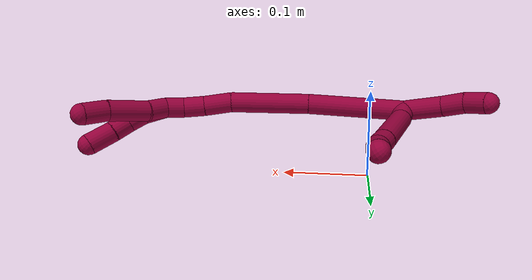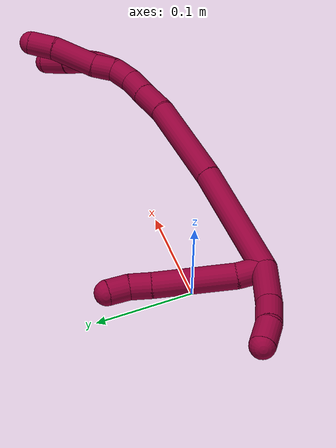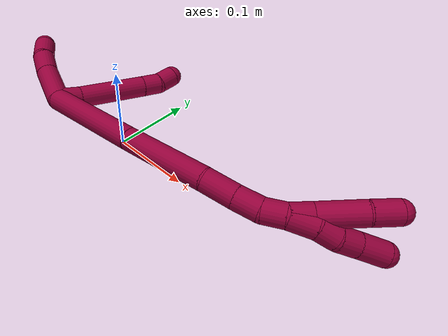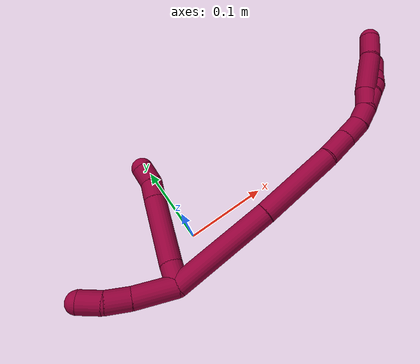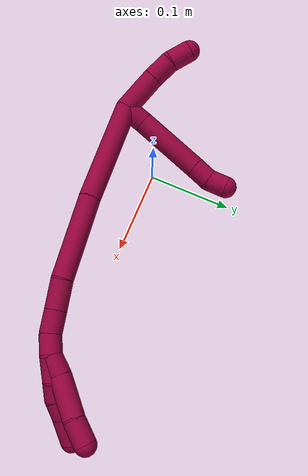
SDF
<sdf version="1.7">
 <world name="default">
  <model name="8">
   <static>0</static>
   <link name="8">
    <collision name="collision-cylinder-e_1_2_8">
     <pose>0.004558 0.012066 -0.000555 -1.61674 0.360839 -0.37742</pose>
     <geometry><cylinder><radius>0.0125</radius><length>0.025821</length></cylinder></geometry>
     <surface>
      <friction><ode><mu>1.16</mu><mu2>1.16</mu2><slip1>0</slip1><slip2>0</slip2></ode></friction>
      <contact><ode><kp>1e+06</kp><kd>1</kd><max_vel>0</max_vel><min_depth>0.001</min_depth></ode></contact>
     </surface>
    </collision>
    <visual name="visual-cylinder-e_1_2_8">
     <pose>0.004558 0.012066 -0.000555 -1.61674 0.360839 -0.37742</pose>
     <geometry><cylinder><radius>0.0125</radius><length>0.025821</length></cylinder></geometry>
     <material><ambient>0.584314 0 0.227451 1</ambient></material>
    </visual>
    <collision name="collision-cylinder-e_2_8_9">
     <pose>0.029353 0.058898 -0.001842 -1.59185 0.527048 -0.537733</pose>
     <geometry><cylinder><radius>0.0125</radius><length>0.080464</length></cylinder></geometry>
     <surface>
      <friction><ode><mu>1.16</mu><mu2>1.16</mu2><slip1>0</slip1><slip2>0</slip2></ode></friction>
      <contact><ode><kp>1e+06</kp><kd>1</kd><max_vel>0</max_vel><min_depth>0.001</min_depth></ode></contact>
     </surface>
    </collision>
    <visual name="visual-cylinder-e_2_8_9">
     <pose>0.029353 0.058898 -0.001842 -1.59185 0.527048 -0.537733</pose>
     <geometry><cylinder><radius>0.0125</radius><length>0.080464</length></cylinder></geometry>
     <material><ambient>0.584314 0 0.227451 1</ambient></material>
    </visual>
    <collision name="collision-cylinder-e_3_9_10">
     <pose>0.055552 0.102907 -0.00281 -1.5964 0.572729 -0.586755</pose>
     <geometry><cylinder><radius>0.0125</radius><length>0.022006</length></cylinder></geometry>
     <surface>
      <friction><ode><mu>1.16</mu><mu2>1.16</mu2><slip1>0</slip1><slip2>0</slip2></ode></friction>
      <contact><ode><kp>1e+06</kp><kd>1</kd><max_vel>0</max_vel><min_depth>0.001</min_depth></ode></contact>
     </surface>
    </collision>
    <visual name="visual-cylinder-e_3_9_10">
     <pose>0.055552 0.102907 -0.00281 -1.5964 0.572729 -0.586755</pose>
     <geometry><cylinder><radius>0.0125</radius><length>0.022006</length></cylinder></geometry>
     <material><ambient>0.584314 0 0.227451 1</ambient></material>
    </visual>
    <collision name="collision-cylinder-e_4_10_6">
     <pose>0.066211 0.121416 0.000101 -1.24323 0.447465 -0.323157</pose>
     <geometry><cylinder><radius>0.0125</radius><length>0.021708</length></cylinder></geometry>
     <surface>
      <friction><ode><mu>1.16</mu><mu2>1.16</mu2><slip1>0</slip1><slip2>0</slip2></ode></friction>
      <contact><ode><kp>1e+06</kp><kd>1</kd><max_vel>0</max_vel><min_depth>0.001</min_depth></ode></contact>
     </surface>
    </collision>
    <visual name="visual-cylinder-e_4_10_6">
     <pose>0.066211 0.121416 0.000101 -1.24323 0.447465 -0.323157</pose>
     <geometry><cylinder><radius>0.0125</radius><length>0.021708</length></cylinder></geometry>
     <material><ambient>0.584314 0 0.227451 1</ambient></material>
    </visual>
    <collision name="collision-cylinder-e_1_2_11">
     <pose>-0.008823 0.005727 0.021282 -0.262864 -0.3808 0.050946</pose>
     <geometry><cylinder><radius>0.0125</radius><length>0.047478</length></cylinder></geometry>
     <surface>
      <friction><ode><mu>1.16</mu><mu2>1.16</mu2><slip1>0</slip1><slip2>0</slip2></ode></friction>
      <contact><ode><kp>1e+06</kp><kd>1</kd><max_vel>0</max_vel><min_depth>0.001</min_depth></ode></contact>
     </surface>
    </collision>
    <visual name="visual-cylinder-e_1_2_11">
     <pose>-0.008823 0.005727 0.021282 -0.262864 -0.3808 0.050946</pose>
     <geometry><cylinder><radius>0.0125</radius><length>0.047478</length></cylinder></geometry>
     <material><ambient>0.584314 0 0.227451 1</ambient></material>
    </visual>
    <collision name="collision-cylinder-e_2_11_12">
     <pose>-0.021309 0.015437 0.055073 -0.30826 -0.272117 0.042533</pose>
     <geometry><cylinder><radius>0.0125</radius><length>0.027262</length></cylinder></geometry>
     <surface>
      <friction><ode><mu>1.16</mu><mu2>1.16</mu2><slip1>0</slip1><slip2>0</slip2></ode></friction>
      <contact><ode><kp>1e+06</kp><kd>1</kd><max_vel>0</max_vel><min_depth>0.001</min_depth></ode></contact>
     </surface>
    </collision>
    <visual name="visual-cylinder-e_2_11_12">
     <pose>-0.021309 0.015437 0.055073 -0.30826 -0.272117 0.042533</pose>
     <geometry><cylinder><radius>0.0125</radius><length>0.027262</length></cylinder></geometry>
     <material><ambient>0.584314 0 0.227451 1</ambient></material>
    </visual>
    <collision name="collision-cylinder-e_3_12_5">
     <pose>-0.027981 0.02614 0.077846 -0.579762 -0.240443 0.072036</pose>
     <geometry><cylinder><radius>0.0125</radius><length>0.02526</length></cylinder></geometry>
     <surface>
      <friction><ode><mu>1.16</mu><mu2>1.16</mu2><slip1>0</slip1><slip2>0</slip2></ode></friction>
      <contact><ode><kp>1e+06</kp><kd>1</kd><max_vel>0</max_vel><min_depth>0.001</min_depth></ode></contact>
     </surface>
    </collision>
    <visual name="visual-cylinder-e_3_12_5">
     <pose>-0.027981 0.02614 0.077846 -0.579762 -0.240443 0.072036</pose>
     <geometry><cylinder><radius>0.0125</radius><length>0.02526</length></cylinder></geometry>
     <material><ambient>0.584314 0 0.227451 1</ambient></material>
    </visual>
    <collision name="collision-cylinder-e_1_2_13">
     <pose>0.043426 -0.001747 -0.040893 3.0989 0.814971 3.04274</pose>
     <geometry><cylinder><radius>0.0125</radius><length>0.11935</length></cylinder></geometry>
     <surface>
      <friction><ode><mu>1.16</mu><mu2>1.16</mu2><slip1>0</slip1><slip2>0</slip2></ode></friction>
      <contact><ode><kp>1e+06</kp><kd>1</kd><max_vel>0</max_vel><min_depth>0.001</min_depth></ode></contact>
     </surface>
    </collision>
    <visual name="visual-cylinder-e_1_2_13">
     <pose>0.043426 -0.001747 -0.040893 3.0989 0.814971 3.04274</pose>
     <geometry><cylinder><radius>0.0125</radius><length>0.11935</length></cylinder></geometry>
     <material><ambient>0.584314 0 0.227451 1</ambient></material>
    </visual>
    <collision name="collision-cylinder-e_2_13_14">
     <pose>0.12188 -0.001723 -0.115428 -3.08899 0.804898 -3.01816</pose>
     <geometry><cylinder><radius>0.0125</radius><length>0.097198</length></cylinder></geometry>
     <surface>
      <friction><ode><mu>1.16</mu><mu2>1.16</mu2><slip1>0</slip1><slip2>0</slip2></ode></friction>
      <contact><ode><kp>1e+06</kp><kd>1</kd><max_vel>0</max_vel><min_depth>0.001</min_depth></ode></contact>
     </surface>
    </collision>
    <visual name="visual-cylinder-e_2_13_14">
     <pose>0.12188 -0.001723 -0.115428 -3.08899 0.804898 -3.01816</pose>
     <geometry><cylinder><radius>0.0125</radius><length>0.097198</length></cylinder></geometry>
     <material><ambient>0.584314 0 0.227451 1</ambient></material>
    </visual>
    <collision name="collision-cylinder-e_3_14_15">
     <pose>0.167933 0.003265 -0.16161 -2.89047 0.705406 -2.4809</pose>
     <geometry><cylinder><radius>0.0125</radius><length>0.034011</length></cylinder></geometry>
     <surface>
      <friction><ode><mu>1.16</mu><mu2>1.16</mu2><slip1>0</slip1><slip2>0</slip2></ode></friction>
      <contact><ode><kp>1e+06</kp><kd>1</kd><max_vel>0</max_vel><min_depth>0.001</min_depth></ode></contact>
     </surface>
    </collision>
    <visual name="visual-cylinder-e_3_14_15">
     <pose>0.167933 0.003265 -0.16161 -2.89047 0.705406 -2.4809</pose>
     <geometry><cylinder><radius>0.0125</radius><length>0.034011</length></cylinder></geometry>
     <material><ambient>0.584314 0 0.227451 1</ambient></material>
    </visual>
    <collision name="collision-cylinder-e_4_15_16">
     <pose>0.1881 0.008643 -0.183437 -2.91297 0.764411 -2.58516</pose>
     <geometry><cylinder><radius>0.0125</radius><length>0.026417</length></cylinder></geometry>
     <surface>
      <friction><ode><mu>1.16</mu><mu2>1.16</mu2><slip1>0</slip1><slip2>0</slip2></ode></friction>
      <contact><ode><kp>1e+06</kp><kd>1</kd><max_vel>0</max_vel><min_depth>0.001</min_depth></ode></contact>
     </surface>
    </collision>
    <visual name="visual-cylinder-e_4_15_16">
     <pose>0.1881 0.008643 -0.183437 -2.91297 0.764411 -2.58516</pose>
     <geometry><cylinder><radius>0.0125</radius><length>0.026417</length></cylinder></geometry>
     <material><ambient>0.584314 0 0.227451 1</ambient></material>
    </visual>
    <collision name="collision-cylinder-e_5_16_1">
     <pose>0.20642 0.01456 -0.19857 -2.57058 0.922694 -2.07487</pose>
     <geometry><cylinder><radius>0.0125</radius><length>0.023024</length></cylinder></geometry>
     <surface>
      <friction><ode><mu>1.16</mu><mu2>1.16</mu2><slip1>0</slip1><slip2>0</slip2></ode></friction>
      <contact><ode><kp>1e+06</kp><kd>1</kd><max_vel>0</max_vel><min_depth>0.001</min_depth></ode></contact>
     </surface>
    </collision>
    <visual name="visual-cylinder-e_5_16_1">
     <pose>0.20642 0.01456 -0.19857 -2.57058 0.922694 -2.07487</pose>
     <geometry><cylinder><radius>0.0125</radius><length>0.023024</length></cylinder></geometry>
     <material><ambient>0.584314 0 0.227451 1</ambient></material>
    </visual>
    <collision name="collision-cylinder-e_1_1_17">
     <pose>0.223804 0.026052 -0.207792 -1.98226 0.771285 -1.11012</pose>
     <geometry><cylinder><radius>0.0125</radius><length>0.023544</length></cylinder></geometry>
     <surface>
      <friction><ode><mu>1.16</mu><mu2>1.16</mu2><slip1>0</slip1><slip2>0</slip2></ode></friction>
      <contact><ode><kp>1e+06</kp><kd>1</kd><max_vel>0</max_vel><min_depth>0.001</min_depth></ode></contact>
     </surface>
    </collision>
    <visual name="visual-cylinder-e_1_1_17">
     <pose>0.223804 0.026052 -0.207792 -1.98226 0.771285 -1.11012</pose>
     <geometry><cylinder><radius>0.0125</radius><length>0.023544</length></cylinder></geometry>
     <material><ambient>0.584314 0 0.227451 1</ambient></material>
    </visual>
    <collision name="collision-cylinder-e_2_17_18">
     <pose>0.251744 0.04576 -0.217933 -2.08516 0.96223 -1.45967</pose>
     <geometry><cylinder><radius>0.0125</radius><length>0.048106</length></cylinder></geometry>
     <surface>
      <friction><ode><mu>1.16</mu><mu2>1.16</mu2><slip1>0</slip1><slip2>0</slip2></ode></friction>
      <contact><ode><kp>1e+06</kp><kd>1</kd><max_vel>0</max_vel><min_depth>0.001</min_depth></ode></contact>
     </surface>
    </collision>
    <visual name="visual-cylinder-e_2_17_18">
     <pose>0.251744 0.04576 -0.217933 -2.08516 0.96223 -1.45967</pose>
     <geometry><cylinder><radius>0.0125</radius><length>0.048106</length></cylinder></geometry>
     <material><ambient>0.584314 0 0.227451 1</ambient></material>
    </visual>
    <collision name="collision-cylinder-e_3_18_4">
     <pose>0.281627 0.066773 -0.228723 -1.98953 0.797978 -1.1515</pose>
     <geometry><cylinder><radius>0.0125</radius><length>0.028351</length></cylinder></geometry>
     <surface>
      <friction><ode><mu>1.16</mu><mu2>1.16</mu2><slip1>0</slip1><slip2>0</slip2></ode></friction>
      <contact><ode><kp>1e+06</kp><kd>1</kd><max_vel>0</max_vel><min_depth>0.001</min_depth></ode></contact>
     </surface>
    </collision>
    <visual name="visual-cylinder-e_3_18_4">
     <pose>0.281627 0.066773 -0.228723 -1.98953 0.797978 -1.1515</pose>
     <geometry><cylinder><radius>0.0125</radius><length>0.028351</length></cylinder></geometry>
     <material><ambient>0.584314 0 0.227451 1</ambient></material>
    </visual>
    <collision name="collision-cylinder-e_1_1_19">
     <pose>0.224006 0.025024 -0.212787 -2.46601 0.664815 -1.55347</pose>
     <geometry><cylinder><radius>0.0125</radius><length>0.027258</length></cylinder></geometry>
     <surface>
      <friction><ode><mu>1.16</mu><mu2>1.16</mu2><slip1>0</slip1><slip2>0</slip2></ode></friction>
      <contact><ode><kp>1e+06</kp><kd>1</kd><max_vel>0</max_vel><min_depth>0.001</min_depth></ode></contact>
     </surface>
    </collision>
    <visual name="visual-cylinder-e_1_1_19">
     <pose>0.224006 0.025024 -0.212787 -2.46601 0.664815 -1.55347</pose>
     <geometry><cylinder><radius>0.0125</radius><length>0.027258</length></cylinder></geometry>
     <material><ambient>0.584314 0 0.227451 1</ambient></material>
    </visual>
    <collision name="collision-cylinder-e_2_19_20">
     <pose>0.23668 0.037297 -0.228621 -2.50086 0.429685 -1.16349</pose>
     <geometry><cylinder><radius>0.0125</radius><length>0.020482</length></cylinder></geometry>
     <surface>
      <friction><ode><mu>1.16</mu><mu2>1.16</mu2><slip1>0</slip1><slip2>0</slip2></ode></friction>
      <contact><ode><kp>1e+06</kp><kd>1</kd><max_vel>0</max_vel><min_depth>0.001</min_depth></ode></contact>
     </surface>
    </collision>
    <visual name="visual-cylinder-e_2_19_20">
     <pose>0.23668 0.037297 -0.228621 -2.50086 0.429685 -1.16349</pose>
     <geometry><cylinder><radius>0.0125</radius><length>0.020482</length></cylinder></geometry>
     <material><ambient>0.584314 0 0.227451 1</ambient></material>
    </visual>
    <collision name="collision-cylinder-e_3_20_21">
     <pose>0.245359 0.050686 -0.241896 -2.20972 0.425228 -0.811002</pose>
     <geometry><cylinder><radius>0.0125</radius><length>0.021397</length></cylinder></geometry>
     <surface>
      <friction><ode><mu>1.16</mu><mu2>1.16</mu2><slip1>0</slip1><slip2>0</slip2></ode></friction>
      <contact><ode><kp>1e+06</kp><kd>1</kd><max_vel>0</max_vel><min_depth>0.001</min_depth></ode></contact>
     </surface>
    </collision>
    <visual name="visual-cylinder-e_3_20_21">
     <pose>0.245359 0.050686 -0.241896 -2.20972 0.425228 -0.811002</pose>
     <geometry><cylinder><radius>0.0125</radius><length>0.021397</length></cylinder></geometry>
     <material><ambient>0.584314 0 0.227451 1</ambient></material>
    </visual>
    <collision name="collision-cylinder-e_4_21_3">
     <pose>0.256792 0.069109 -0.256455 -2.26076 0.472174 -0.943953</pose>
     <geometry><cylinder><radius>0.0125</radius><length>0.030863</length></cylinder></geometry>
     <surface>
      <friction><ode><mu>1.16</mu><mu2>1.16</mu2><slip1>0</slip1><slip2>0</slip2></ode></friction>
      <contact><ode><kp>1e+06</kp><kd>1</kd><max_vel>0</max_vel><min_depth>0.001</min_depth></ode></contact>
     </surface>
    </collision>
    <visual name="visual-cylinder-e_4_21_3">
     <pose>0.256792 0.069109 -0.256455 -2.26076 0.472174 -0.943953</pose>
     <geometry><cylinder><radius>0.0125</radius><length>0.030863</length></cylinder></geometry>
     <material><ambient>0.584314 0 0.227451 1</ambient></material>
    </visual>
    <collision name="collision-sphere-3">
     <pose>0.26381 0.079708 -0.265203 0 -0 0</pose>
     <geometry><sphere><radius>0.0125</radius></sphere></geometry>
     <surface>
      <friction><ode><mu>1.16</mu><mu2>1.16</mu2><slip1>0</slip1><slip2>0</slip2></ode></friction>
      <contact><ode><kp>1e+06</kp><kd>1</kd><max_vel>0</max_vel><min_depth>0.001</min_depth></ode></contact>
     </surface>
    </collision>
    <visual name="visual-sphere-3">
     <pose>0.26381 0.079708 -0.265203 0 -0 0</pose>
     <geometry><sphere><radius>0.0125</radius></sphere></geometry>
     <material><ambient>0.584314 0 0.227451 1</ambient></material>
    </visual>
    <collision name="collision-sphere-21">
     <pose>0.249773 0.058509 -0.247707 0 -0 0</pose>
     <geometry><sphere><radius>0.0125</radius></sphere></geometry>
     <surface>
      <friction><ode><mu>1.16</mu><mu2>1.16</mu2><slip1>0</slip1><slip2>0</slip2></ode></friction>
      <contact><ode><kp>1e+06</kp><kd>1</kd><max_vel>0</max_vel><min_depth>0.001</min_depth></ode></contact>
     </surface>
    </collision>
    <visual name="visual-sphere-21">
     <pose>0.249773 0.058509 -0.247707 0 -0 0</pose>
     <geometry><sphere><radius>0.0125</radius></sphere></geometry>
     <material><ambient>0.584314 0 0.227451 1</ambient></material>
    </visual>
    <collision name="collision-sphere-20">
     <pose>0.240946 0.042862 -0.236084 0 -0 0</pose>
     <geometry><sphere><radius>0.0125</radius></sphere></geometry>
     <surface>
      <friction><ode><mu>1.16</mu><mu2>1.16</mu2><slip1>0</slip1><slip2>0</slip2></ode></friction>
      <contact><ode><kp>1e+06</kp><kd>1</kd><max_vel>0</max_vel><min_depth>0.001</min_depth></ode></contact>
     </surface>
    </collision>
    <visual name="visual-sphere-20">
     <pose>0.240946 0.042862 -0.236084 0 -0 0</pose>
     <geometry><sphere><radius>0.0125</radius></sphere></geometry>
     <material><ambient>0.584314 0 0.227451 1</ambient></material>
    </visual>
    <collision name="collision-sphere-19">
     <pose>0.232414 0.031732 -0.221157 0 -0 0</pose>
     <geometry><sphere><radius>0.0125</radius></sphere></geometry>
     <surface>
      <friction><ode><mu>1.16</mu><mu2>1.16</mu2><slip1>0</slip1><slip2>0</slip2></ode></friction>
      <contact><ode><kp>1e+06</kp><kd>1</kd><max_vel>0</max_vel><min_depth>0.001</min_depth></ode></contact>
     </surface>
    </collision>
    <visual name="visual-sphere-19">
     <pose>0.232414 0.031732 -0.221157 0 -0 0</pose>
     <geometry><sphere><radius>0.0125</radius></sphere></geometry>
     <material><ambient>0.584314 0 0.227451 1</ambient></material>
    </visual>
    <collision name="collision-sphere-11">
     <pose>-0.017646 0.011453 0.042563 0 -0 0</pose>
     <geometry><sphere><radius>0.0125</radius></sphere></geometry>
     <surface>
      <friction><ode><mu>1.16</mu><mu2>1.16</mu2><slip1>0</slip1><slip2>0</slip2></ode></friction>
      <contact><ode><kp>1e+06</kp><kd>1</kd><max_vel>0</max_vel><min_depth>0.001</min_depth></ode></contact>
     </surface>
    </collision>
    <visual name="visual-sphere-11">
     <pose>-0.017646 0.011453 0.042563 0 -0 0</pose>
     <geometry><sphere><radius>0.0125</radius></sphere></geometry>
     <material><ambient>0.584314 0 0.227451 1</ambient></material>
    </visual>
    <collision name="collision-sphere-6">
     <pose>0.070907 0.130681 0.00325 0 -0 0</pose>
     <geometry><sphere><radius>0.0125</radius></sphere></geometry>
     <surface>
      <friction><ode><mu>1.16</mu><mu2>1.16</mu2><slip1>0</slip1><slip2>0</slip2></ode></friction>
      <contact><ode><kp>1e+06</kp><kd>1</kd><max_vel>0</max_vel><min_depth>0.001</min_depth></ode></contact>
     </surface>
    </collision>
    <visual name="visual-sphere-6">
     <pose>0.070907 0.130681 0.00325 0 -0 0</pose>
     <geometry><sphere><radius>0.0125</radius></sphere></geometry>
     <material><ambient>0.584314 0 0.227451 1</ambient></material>
    </visual>
    <collision name="collision-sphere-10">
     <pose>0.061515 0.112151 -0.003047 0 -0 0</pose>
     <geometry><sphere><radius>0.0125</radius></sphere></geometry>
     <surface>
      <friction><ode><mu>1.16</mu><mu2>1.16</mu2><slip1>0</slip1><slip2>0</slip2></ode></friction>
      <contact><ode><kp>1e+06</kp><kd>1</kd><max_vel>0</max_vel><min_depth>0.001</min_depth></ode></contact>
     </surface>
    </collision>
    <visual name="visual-sphere-10">
     <pose>0.061515 0.112151 -0.003047 0 -0 0</pose>
     <geometry><sphere><radius>0.0125</radius></sphere></geometry>
     <material><ambient>0.584314 0 0.227451 1</ambient></material>
    </visual>
    <collision name="collision-sphere-9">
     <pose>0.049589 0.093662 -0.002573 0 -0 0</pose>
     <geometry><sphere><radius>0.0125</radius></sphere></geometry>
     <surface>
      <friction><ode><mu>1.16</mu><mu2>1.16</mu2><slip1>0</slip1><slip2>0</slip2></ode></friction>
      <contact><ode><kp>1e+06</kp><kd>1</kd><max_vel>0</max_vel><min_depth>0.001</min_depth></ode></contact>
     </surface>
    </collision>
    <visual name="visual-sphere-9">
     <pose>0.049589 0.093662 -0.002573 0 -0 0</pose>
     <geometry><sphere><radius>0.0125</radius></sphere></geometry>
     <material><ambient>0.584314 0 0.227451 1</ambient></material>
    </visual>
    <collision name="collision-sphere-2">
     <geometry><sphere><radius>0.0125</radius></sphere></geometry>
     <surface>
      <friction><ode><mu>1.16</mu><mu2>1.16</mu2><slip1>0</slip1><slip2>0</slip2></ode></friction>
      <contact><ode><kp>1e+06</kp><kd>1</kd><max_vel>0</max_vel><min_depth>0.001</min_depth></ode></contact>
     </surface>
    </collision>
    <visual name="visual-sphere-2">
     <geometry><sphere><radius>0.0125</radius></sphere></geometry>
     <material><ambient>0.584314 0 0.227451 1</ambient></material>
    </visual>
    <collision name="collision-sphere-8">
     <pose>0.009116 0.024133 -0.00111 0 -0 0</pose>
     <geometry><sphere><radius>0.0125</radius></sphere></geometry>
     <surface>
      <friction><ode><mu>1.16</mu><mu2>1.16</mu2><slip1>0</slip1><slip2>0</slip2></ode></friction>
      <contact><ode><kp>1e+06</kp><kd>1</kd><max_vel>0</max_vel><min_depth>0.001</min_depth></ode></contact>
     </surface>
    </collision>
    <visual name="visual-sphere-8">
     <pose>0.009116 0.024133 -0.00111 0 -0 0</pose>
     <geometry><sphere><radius>0.0125</radius></sphere></geometry>
     <material><ambient>0.584314 0 0.227451 1</ambient></material>
    </visual>
    <collision name="collision-sphere-12">
     <pose>-0.024973 0.01942 0.067584 0 -0 0</pose>
     <geometry><sphere><radius>0.0125</radius></sphere></geometry>
     <surface>
      <friction><ode><mu>1.16</mu><mu2>1.16</mu2><slip1>0</slip1><slip2>0</slip2></ode></friction>
      <contact><ode><kp>1e+06</kp><kd>1</kd><max_vel>0</max_vel><min_depth>0.001</min_depth></ode></contact>
     </surface>
    </collision>
    <visual name="visual-sphere-12">
     <pose>-0.024973 0.01942 0.067584 0 -0 0</pose>
     <geometry><sphere><radius>0.0125</radius></sphere></geometry>
     <material><ambient>0.584314 0 0.227451 1</ambient></material>
    </visual>
    <collision name="collision-sphere-5">
     <pose>-0.030988 0.03286 0.088108 0 -0 0</pose>
     <geometry><sphere><radius>0.0125</radius></sphere></geometry>
     <surface>
      <friction><ode><mu>1.16</mu><mu2>1.16</mu2><slip1>0</slip1><slip2>0</slip2></ode></friction>
      <contact><ode><kp>1e+06</kp><kd>1</kd><max_vel>0</max_vel><min_depth>0.001</min_depth></ode></contact>
     </surface>
    </collision>
    <visual name="visual-sphere-5">
     <pose>-0.030988 0.03286 0.088108 0 -0 0</pose>
     <geometry><sphere><radius>0.0125</radius></sphere></geometry>
     <material><ambient>0.584314 0 0.227451 1</ambient></material>
    </visual>
    <collision name="collision-sphere-13">
     <pose>0.086852 -0.003494 -0.081786 0 -0 0</pose>
     <geometry><sphere><radius>0.0125</radius></sphere></geometry>
     <surface>
      <friction><ode><mu>1.16</mu><mu2>1.16</mu2><slip1>0</slip1><slip2>0</slip2></ode></friction>
      <contact><ode><kp>1e+06</kp><kd>1</kd><max_vel>0</max_vel><min_depth>0.001</min_depth></ode></contact>
     </surface>
    </collision>
    <visual name="visual-sphere-13">
     <pose>0.086852 -0.003494 -0.081786 0 -0 0</pose>
     <geometry><sphere><radius>0.0125</radius></sphere></geometry>
     <material><ambient>0.584314 0 0.227451 1</ambient></material>
    </visual>
    <collision name="collision-sphere-14">
     <pose>0.156908 4.8e-05 -0.149069 0 -0 0</pose>
     <geometry><sphere><radius>0.0125</radius></sphere></geometry>
     <surface>
      <friction><ode><mu>1.16</mu><mu2>1.16</mu2><slip1>0</slip1><slip2>0</slip2></ode></friction>
      <contact><ode><kp>1e+06</kp><kd>1</kd><max_vel>0</max_vel><min_depth>0.001</min_depth></ode></contact>
     </surface>
    </collision>
    <visual name="visual-sphere-14">
     <pose>0.156908 4.8e-05 -0.149069 0 -0 0</pose>
     <geometry><sphere><radius>0.0125</radius></sphere></geometry>
     <material><ambient>0.584314 0 0.227451 1</ambient></material>
    </visual>
    <collision name="collision-sphere-15">
     <pose>0.178959 0.006483 -0.174151 0 -0 0</pose>
     <geometry><sphere><radius>0.0125</radius></sphere></geometry>
     <surface>
      <friction><ode><mu>1.16</mu><mu2>1.16</mu2><slip1>0</slip1><slip2>0</slip2></ode></friction>
      <contact><ode><kp>1e+06</kp><kd>1</kd><max_vel>0</max_vel><min_depth>0.001</min_depth></ode></contact>
     </surface>
    </collision>
    <visual name="visual-sphere-15">
     <pose>0.178959 0.006483 -0.174151 0 -0 0</pose>
     <geometry><sphere><radius>0.0125</radius></sphere></geometry>
     <material><ambient>0.584314 0 0.227451 1</ambient></material>
    </visual>
    <collision name="collision-sphere-16">
     <pose>0.197242 0.010804 -0.192723 0 -0 0</pose>
     <geometry><sphere><radius>0.0125</radius></sphere></geometry>
     <surface>
      <friction><ode><mu>1.16</mu><mu2>1.16</mu2><slip1>0</slip1><slip2>0</slip2></ode></friction>
      <contact><ode><kp>1e+06</kp><kd>1</kd><max_vel>0</max_vel><min_depth>0.001</min_depth></ode></contact>
     </surface>
    </collision>
    <visual name="visual-sphere-16">
     <pose>0.197242 0.010804 -0.192723 0 -0 0</pose>
     <geometry><sphere><radius>0.0125</radius></sphere></geometry>
     <material><ambient>0.584314 0 0.227451 1</ambient></material>
    </visual>
    <collision name="collision-sphere-1">
     <pose>0.215598 0.018316 -0.204417 0 -0 0</pose>
     <geometry><sphere><radius>0.0125</radius></sphere></geometry>
     <surface>
      <friction><ode><mu>1.16</mu><mu2>1.16</mu2><slip1>0</slip1><slip2>0</slip2></ode></friction>
      <contact><ode><kp>1e+06</kp><kd>1</kd><max_vel>0</max_vel><min_depth>0.001</min_depth></ode></contact>
     </surface>
    </collision>
    <visual name="visual-sphere-1">
     <pose>0.215598 0.018316 -0.204417 0 -0 0</pose>
     <geometry><sphere><radius>0.0125</radius></sphere></geometry>
     <material><ambient>0.584314 0 0.227451 1</ambient></material>
    </visual>
    <collision name="collision-sphere-18">
     <pose>0.271478 0.057731 -0.224699 0 -0 0</pose>
     <geometry><sphere><radius>0.0125</radius></sphere></geometry>
     <surface>
      <friction><ode><mu>1.16</mu><mu2>1.16</mu2><slip1>0</slip1><slip2>0</slip2></ode></friction>
      <contact><ode><kp>1e+06</kp><kd>1</kd><max_vel>0</max_vel><min_depth>0.001</min_depth></ode></contact>
     </surface>
    </collision>
    <visual name="visual-sphere-18">
     <pose>0.271478 0.057731 -0.224699 0 -0 0</pose>
     <geometry><sphere><radius>0.0125</radius></sphere></geometry>
     <material><ambient>0.584314 0 0.227451 1</ambient></material>
    </visual>
    <collision name="collision-sphere-17">
     <pose>0.232009 0.033789 -0.211168 0 -0 0</pose>
     <geometry><sphere><radius>0.0125</radius></sphere></geometry>
     <surface>
      <friction><ode><mu>1.16</mu><mu2>1.16</mu2><slip1>0</slip1><slip2>0</slip2></ode></friction>
      <contact><ode><kp>1e+06</kp><kd>1</kd><max_vel>0</max_vel><min_depth>0.001</min_depth></ode></contact>
     </surface>
    </collision>
    <visual name="visual-sphere-17">
     <pose>0.232009 0.033789 -0.211168 0 -0 0</pose>
     <geometry><sphere><radius>0.0125</radius></sphere></geometry>
     <material><ambient>0.584314 0 0.227451 1</ambient></material>
    </visual>
    <collision name="collision-sphere-4">
     <pose>0.291776 0.075815 -0.232747 0 -0 0</pose>
     <geometry><sphere><radius>0.0125</radius></sphere></geometry>
     <surface>
      <friction><ode><mu>1.16</mu><mu2>1.16</mu2><slip1>0</slip1><slip2>0</slip2></ode></friction>
      <contact><ode><kp>1e+06</kp><kd>1</kd><max_vel>0</max_vel><min_depth>0.001</min_depth></ode></contact>
     </surface>
    </collision>
    <visual name="visual-sphere-4">
     <pose>0.291776 0.075815 -0.232747 0 -0 0</pose>
     <geometry><sphere><radius>0.0125</radius></sphere></geometry>
     <material><ambient>0.584314 0 0.227451 1</ambient></material>
    </visual>
    <inertial>
     <pose>0.113851 0.027965 -0.096256 0 -0 0</pose>
     <mass>0.75</mass>
     <inertia>
      <ixx>-0.00011</ixx>
      <ixy>0</ixy>
      <ixz>0</ixz>
      <iyy>0.000255</iyy>
      <iyz>0</iyz>
      <izz>-0.00029</izz>
     </inertia>
    </inertial>
   </link>
   <pose>-0.043747 -0.052914 0.070543 -0.68473 -0.681415 0.536765</pose>
  </model>
 </world>
</sdf>
